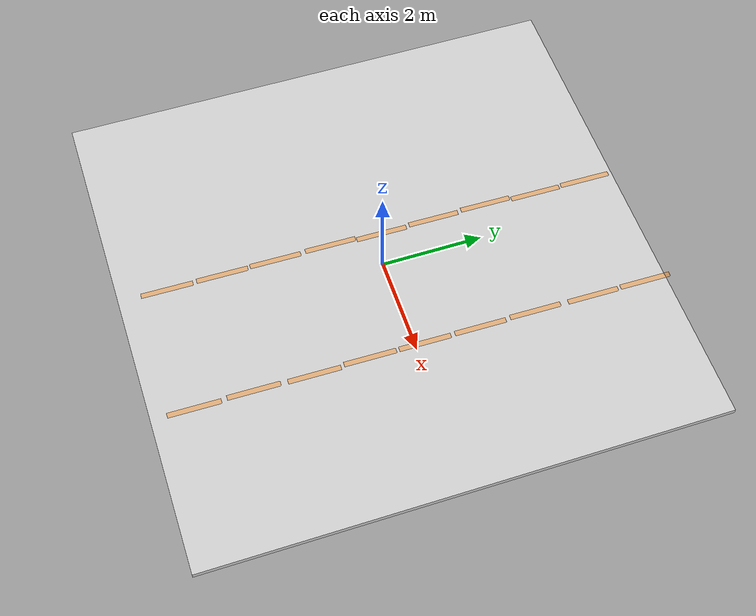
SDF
<sdf version='1.9'>
  <world name='empty_straight_lane'>
    <plugin name='ignition::gazebo::systems::Physics' filename='ignition-gazebo-physics-system'/>
    <plugin name='ignition::gazebo::systems::UserCommands' filename='ignition-gazebo-user-commands-system'/>
    <plugin name='ignition::gazebo::systems::SceneBroadcaster' filename='ignition-gazebo-scene-broadcaster-system'/>
    <plugin name='ignition::gazebo::systems::Contact' filename='libignition-gazebo-contact-system.so'/>
    <physics type='ode'>
      <max_step_size>0.001</max_step_size>
      <real_time_update_rate>1000</real_time_update_rate>
      <real_time_factor>1</real_time_factor>
    </physics>
    <scene>
      <ambient>0.1 0.1 0.1 0.1</ambient>
      <background>0.8 0.8 0.8 1</background>
      <grid>true</grid>
      <shadows>true</shadows>
    </scene>
    <gui fullscreen='false'>
      <camera name='user_camera'>
        <pose>-1.8 14.4 8.6 0.0 0.545 -1.65</pose>
        <view_controller>orbit</view_controller>
      </camera>
    </gui>
    <gravity>0 0 -9.8</gravity>
    <magnetic_field>6e-06 2.3e-05 -4.2e-05</magnetic_field>
    <atmosphere type='adiabatic'/>
    <include>
      <uri>file:///home/andrew/IGVC/ros2_ws/install/littleblue_sim/share/littleblue_sim/worlds/empty_straight_lane/custom_models/floor</uri>
      <name>custom_course</name>
      <pose>0 0 0 0 -0 0</pose>
    </include>
    <include>
      <uri>file:///home/andrew/IGVC/ros2_ws/install/littleblue_sim/share/littleblue_sim/models/line_boundary_visible</uri>
      <name>line_boundary_visible</name>
      <pose>-0.612888 4.40625 0 0 0 -1.58307</pose>
    </include>
    <include>
      <uri>file:///home/andrew/IGVC/ros2_ws/install/littleblue_sim/share/littleblue_sim/models/line_boundary_visible</uri>
      <name>line_boundary_visible_1</name>
      <pose>-0.661753 2.32727 0 0 0 -1.58307</pose>
    </include>
    <include>
      <uri>file:///home/andrew/IGVC/ros2_ws/install/littleblue_sim/share/littleblue_sim/models/line_boundary_visible</uri>
      <name>line_boundary_visible_1_1</name>
      <pose>-0.607988 3.35873 0 0 0 -1.58307</pose>
    </include>
    <include>
      <uri>file:///home/andrew/IGVC/ros2_ws/install/littleblue_sim/share/littleblue_sim/models/line_boundary_visible</uri>
      <name>line_boundary_visible_1_2</name>
      <pose>-0.643307 1.24872 0 0 0 -1.58307</pose>
    </include>
    <include>
      <uri>file:///home/andrew/IGVC/ros2_ws/install/littleblue_sim/share/littleblue_sim/models/line_boundary_visible</uri>
      <name>line_boundary_visible_1_3</name>
      <pose>-0.625472 0.182335 0 0 0 -1.58307</pose>
    </include>
    <include>
      <uri>file:///home/andrew/IGVC/ros2_ws/install/littleblue_sim/share/littleblue_sim/models/line_boundary_visible</uri>
      <name>line_boundary_visible_1_4</name>
      <pose>-0.672691 -0.838452 0 0 0 -1.58307</pose>
    </include>
    <include>
      <uri>file:///home/andrew/IGVC/ros2_ws/install/littleblue_sim/share/littleblue_sim/models/line_boundary_visible</uri>
      <name>line_boundary_visible_1_5</name>
      <pose>-0.662934 -1.93739 0 0 0 -1.58307</pose>
    </include>
    <include>
      <uri>file:///home/andrew/IGVC/ros2_ws/install/littleblue_sim/share/littleblue_sim/models/line_boundary_visible</uri>
      <name>line_boundary_visible_1_6</name>
      <pose>-0.657208 -2.98611 0 0 0 -1.58307</pose>
    </include>
    <include>
      <uri>file:///home/andrew/IGVC/ros2_ws/install/littleblue_sim/share/littleblue_sim/models/line_boundary_visible</uri>
      <name>line_boundary_visible_1_7</name>
      <pose>-0.653258 -4.06003 0 0 0 -1.58307</pose>
    </include>
    <include>
      <uri>file:///home/andrew/IGVC/ros2_ws/install/littleblue_sim/share/littleblue_sim/models/line_boundary_visible</uri>
      <name>line_boundary_visible_1_8</name>
      <pose>1.9704 -4.19173 0 0 0 -1.58307</pose>
    </include>
    <include>
      <uri>file:///home/andrew/IGVC/ros2_ws/install/littleblue_sim/share/littleblue_sim/models/line_boundary_visible</uri>
      <name>line_boundary_visible_1_9</name>
      <pose>1.9552 -3.0839 0 0 0 -1.58307</pose>
    </include>
    <include>
      <uri>file:///home/andrew/IGVC/ros2_ws/install/littleblue_sim/share/littleblue_sim/models/line_boundary_visible</uri>
      <name>line_boundary_visible_1_10</name>
      <pose>1.97717 -1.95011 0 0 0 -1.58307</pose>
    </include>
    <include>
      <uri>file:///home/andrew/IGVC/ros2_ws/install/littleblue_sim/share/littleblue_sim/models/line_boundary_visible</uri>
      <name>line_boundary_visible_1_11</name>
      <pose>1.9512 -0.880665 0 0 0 -1.58307</pose>
    </include>
    <include>
      <uri>file:///home/andrew/IGVC/ros2_ws/install/littleblue_sim/share/littleblue_sim/models/line_boundary_visible</uri>
      <name>line_boundary_visible_1_12</name>
      <pose>1.95933 0.174807 0 0 0 -1.58307</pose>
    </include>
    <include>
      <uri>file:///home/andrew/IGVC/ros2_ws/install/littleblue_sim/share/littleblue_sim/models/line_boundary_visible</uri>
      <name>line_boundary_visible_1_13</name>
      <pose>1.96045 1.26046 0 0 0 -1.58307</pose>
    </include>
    <include>
      <uri>file:///home/andrew/IGVC/ros2_ws/install/littleblue_sim/share/littleblue_sim/models/line_boundary_visible</uri>
      <name>line_boundary_visible_1_14</name>
      <pose>1.95145 2.35338 0 0 0 -1.58307</pose>
    </include>
    <include>
      <uri>file:///home/andrew/IGVC/ros2_ws/install/littleblue_sim/share/littleblue_sim/models/line_boundary_visible</uri>
      <name>line_boundary_visible_1_15</name>
      <pose>1.96928 3.50928 0 0 0 -1.58307</pose>
    </include>
    <include>
      <uri>file:///home/andrew/IGVC/ros2_ws/install/littleblue_sim/share/littleblue_sim/models/line_boundary_visible</uri>
      <name>line_boundary_visible_1_16</name>
      <pose>1.97035 4.5703 0 0 0 -1.58307</pose>
    </include>
    <light name='sun' type='directional'>
      <pose>0 0 10 0 -0 0</pose>
      <cast_shadows>true</cast_shadows>
      <intensity>1</intensity>
      <direction>-0.5 0.1 -0.9</direction>
      <diffuse>1 1 1 1</diffuse>
      <specular>0.2 0.2 0.2 1</specular>
      <attenuation>
        <range>10</range>
        <linear>1</linear>
        <constant>1</constant>
        <quadratic>0</quadratic>
      </attenuation>
      <spot>
        <inner_angle>0</inner_angle>
        <outer_angle>0</outer_angle>
        <falloff>0</falloff>
      </spot>
    </light>
  </world>
</sdf>

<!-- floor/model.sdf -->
<sdf version="1.9">
  <model name="floor">
    <static>true</static>
    <link name="course_floor">
      <collision name="floor_collision">
        <geometry>
          <box>
            <size>10 10 0.1</size>
          </box>
        </geometry>
      </collision>

      <visual name="visual">
        <geometry>
          <box>
            <size>10 10 0.1</size>
          </box>
        </geometry>

        <material>
          <ambient>0.1 0.1 0.1 1</ambient>
          <diffuse>0.8 0.8 0.8 1</diffuse>
          <specular>0.1 0.1 0.1 1</specular>

          <pbr>
            <metal>
              <albedo_map>materials/textures/floor_picture.png</albedo_map>
              <roughness>0.9</roughness>
              <metalness>0.0</metalness>
            </metal>
          </pbr>
        </material>

      </visual>
    </link>
  </model>
</sdf>

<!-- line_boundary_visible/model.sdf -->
<sdf version="1.8">
  <model name="line_boundary_visible">

    <static>true</static>

    <link name="white_line_boundary">
      <collision name="line_collision">
        <pose>0 0 0.1 0 0 0</pose>
        <geometry>
          <box><size>1 0.1 0.01</size></box>
        </geometry>
      </collision>

      <visual name="line_visual">
        <pose>0 0 0.1 0 0 0</pose>
        <geometry>
          <box><size>1 0.1 0.01</size></box>
        </geometry>
        <material>
          <ambient>1.0 0.5 0.0 0.4</ambient>
          <diffuse>1.0 0.5 0.0 0.4</diffuse>
        </material>
      </visual>
    </link>

  </model>
</sdf>
